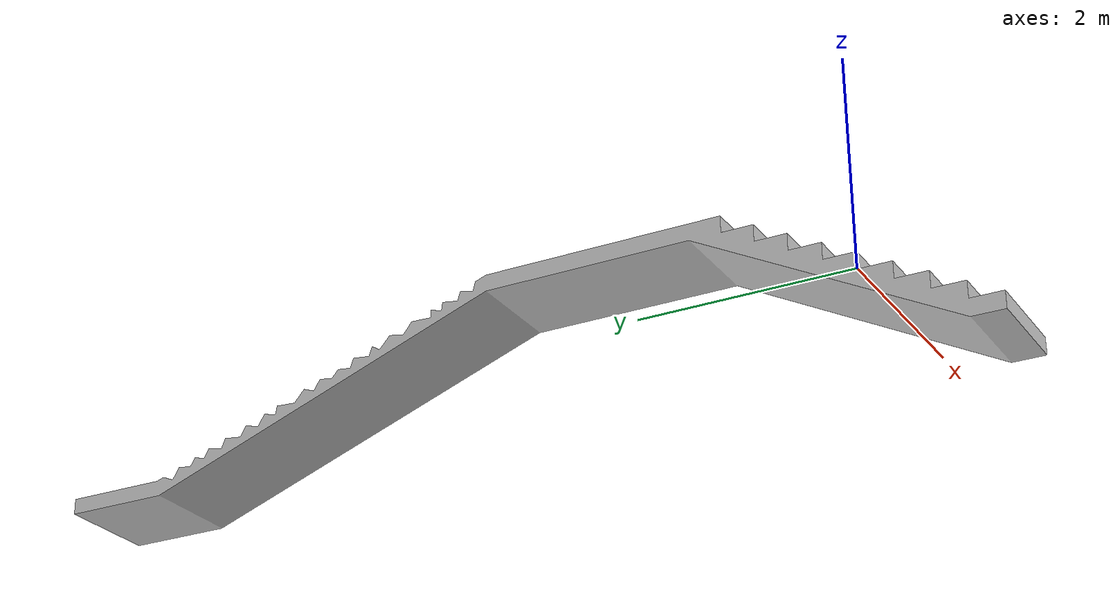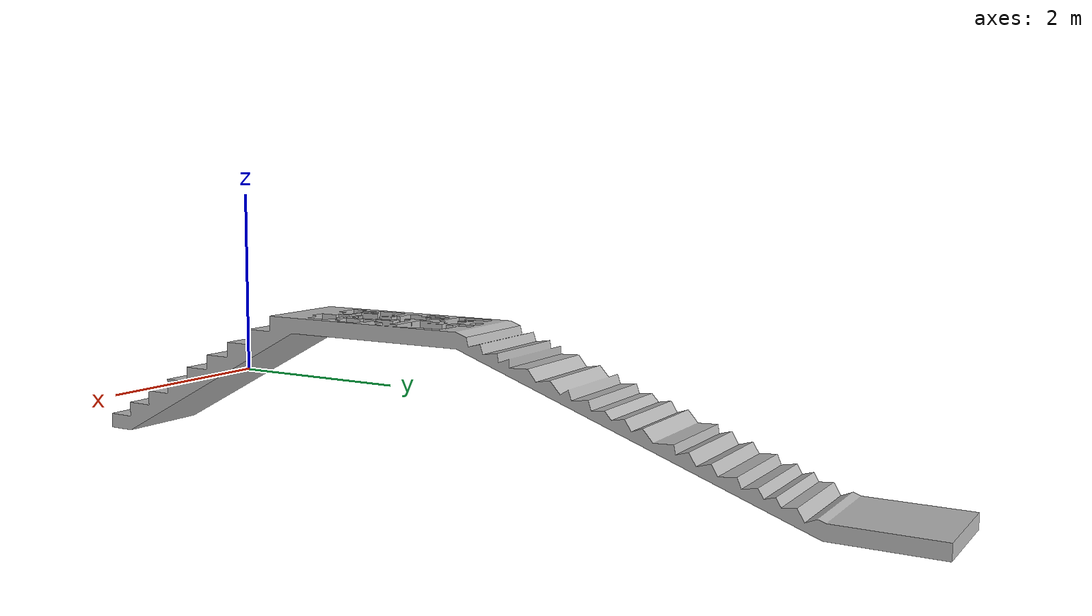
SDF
<sdf version='1.6'>
  <model name='STEP_TYPE3'>
 <joint name="fixed to ground" type="fixed">
      <parent>world</parent>
      <child>STEP_TYPE3</child>
    </joint>
    <link name='STEP_TYPE3'>
      <pose frame=''>0 0 0 0 -0 0</pose>
      <inertial>
        <pose frame=''>0.49856 2.8411 0.10248 0 -0 0</pose>
        <mass>1436.2</mass>
        <inertia>
          <ixx>11444.9</ixx>
          <ixy>0.619773</ixy>
          <ixz>-1.32447</ixz>
          <iyy>437.578</iyy>
          <iyz>469.155</iyz>
          <izz>11249.8</izz>
        </inertia>
      </inertial>
      <collision name='STEP_TYPE3_collision'>
        <pose frame=''>0 0 0 1.5708 -0 0</pose>
        <geometry>
          <mesh>
            <scale>1 1 1</scale>
            <uri>model://STEP_TYPE3/meshes/STEP_TYPE3.STL</uri>
          </mesh>
        </geometry>
      </collision>
      <visual name='STEP_TYPE3_visual'>
        <pose frame=''>0 0 0 1.5708 -0 0</pose>
        <geometry>
          <mesh>
            <scale>1 1 1</scale>
            <uri>model://STEP_TYPE3/meshes/STEP_TYPE3.STL</uri>
          </mesh>
        </geometry>
      </visual>
    </link>
  </model>
</sdf>
